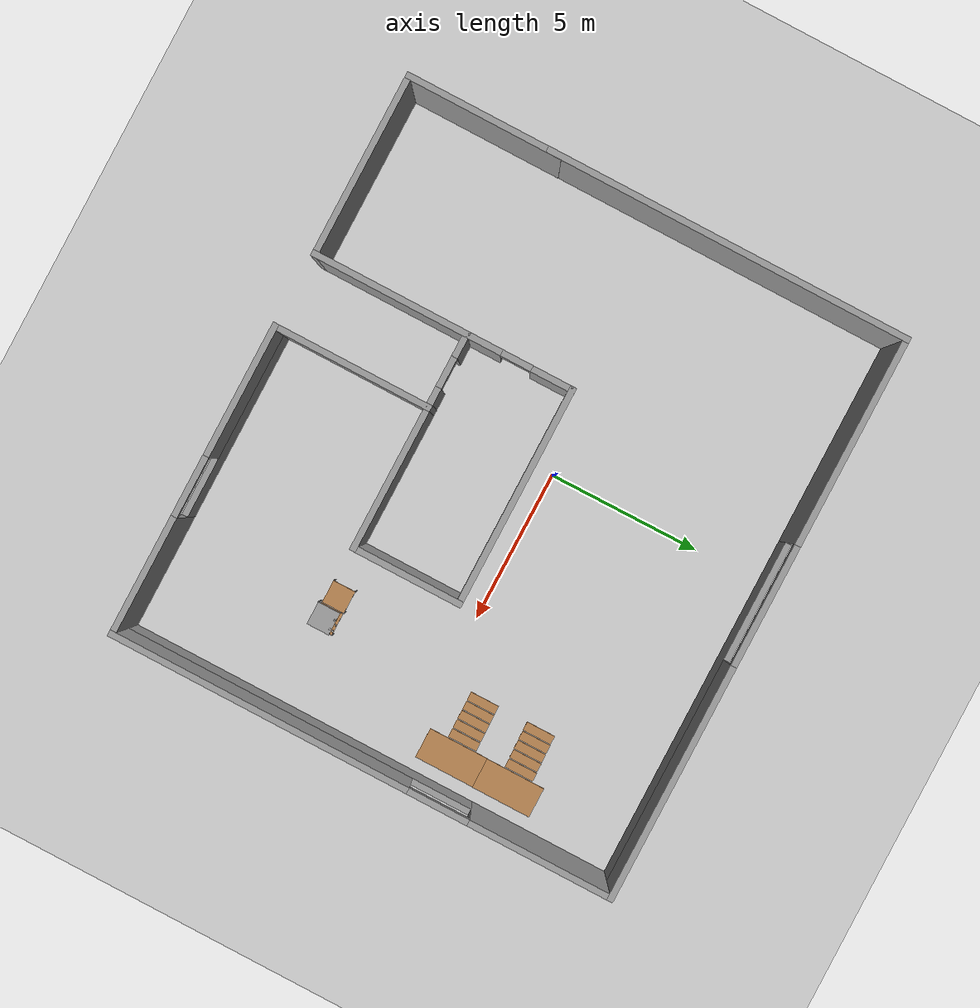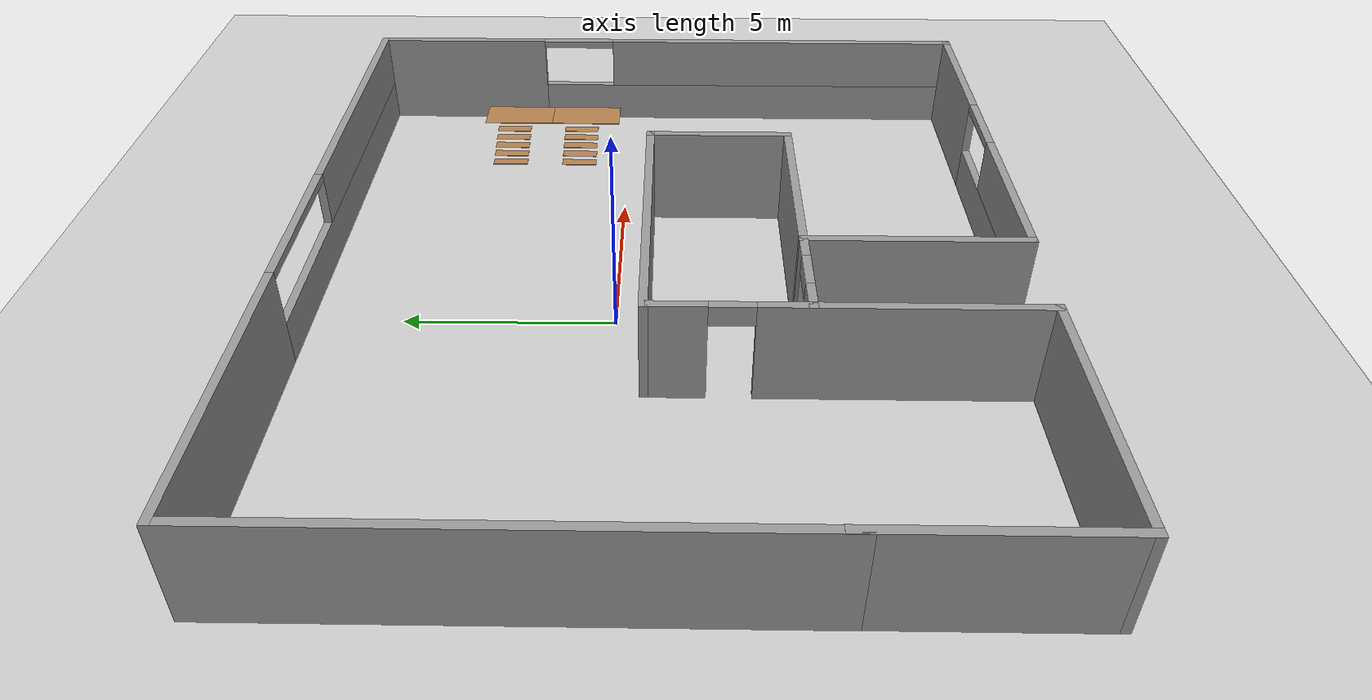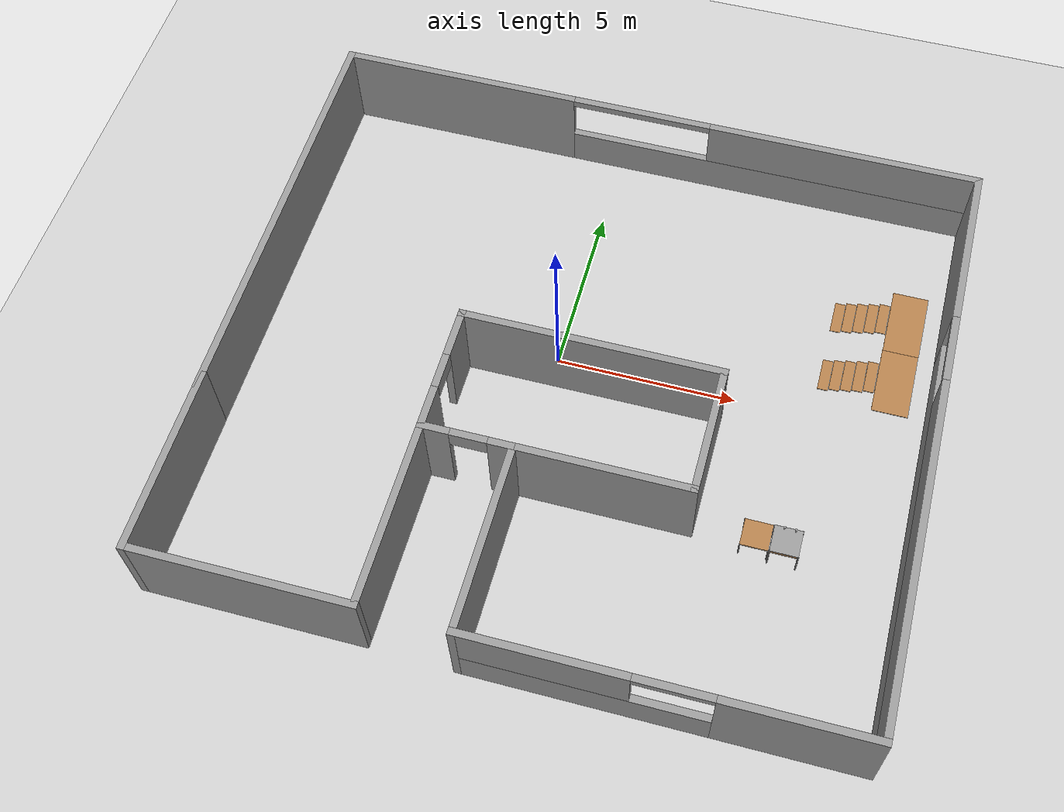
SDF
<sdf version="1.6">
 <world name="default">
  <light name="sun" type="directional">
   <pose>0 0 10 0 -0 0</pose>
   <diffuse>0.8 0.8 0.8 1</diffuse>
   <specular>0.2 0.2 0.2 1</specular>
   <attenuation>
    <range>1000</range>
    <constant>0.9</constant>
    <linear>0.01</linear>
    <quadratic>0.001</quadratic>
   </attenuation>
   <direction>-0.5 0.1 -0.9</direction>
  </light>
  <model name="ground_plane">
   <static>1</static>
   <link name="link">
    <collision name="collision">
     <geometry><plane><normal>0 0 1</normal><size>100 100</size></plane></geometry>
     <surface>
      <contact><collide_bitmask>65535</collide_bitmask></contact>
      <friction><ode><mu>100</mu><mu2>50</mu2></ode></friction>
     </surface>
    </collision>
    <visual name="visual">
     <cast_shadows>0</cast_shadows>
     <geometry><plane><normal>0 0 1</normal><size>100 100</size></plane></geometry>
     <material>
      <script><uri>file://media/materials/scripts/gazebo.material</uri><name>Gazebo/Grey</name></script>
     </material>
    </visual>
   </link>
  </model>
  <gravity>0 0 -9.8</gravity>
  <magnetic_field>6e-06 2.3e-05 -4.2e-05</magnetic_field>
  <atmosphere type="adiabatic"/>
  <physics name="default_physics" default="0" type="ode">
   <max_step_size>0.001</max_step_size>
   <real_time_factor>1</real_time_factor>
   <real_time_update_rate>1000</real_time_update_rate>
  </physics>
  <scene><ambient>0.4 0.4 0.4 1</ambient><background>0.7 0.7 0.7 1</background><shadows>1</shadows></scene>
  <audio><device>default</device></audio>
  <spherical_coordinates>
   <surface_model>EARTH_WGS84</surface_model>
   <latitude_deg>0</latitude_deg>
   <longitude_deg>0</longitude_deg>
   <elevation>0</elevation>
   <heading_deg>0</heading_deg>
  </spherical_coordinates>
  <model name="walls">
   <link name="Wall_0">
    <collision name="Wall_0_Collision">
     <geometry><box><size>11.9993 0.2 2.5</size></box></geometry>
     <pose>0 0 1.25 0 -0 0</pose>
    </collision>
    <visual name="Wall_0_Visual">
     <pose>0 0 1.25 0 -0 0</pose>
     <geometry><box><size>11.9993 0.2 2.5</size></box></geometry>
     <material>
      <script><uri>file://media/materials/scripts/gazebo.material</uri><name>Gazebo/Grey</name></script>
     </material>
    </visual>
    <velocity_decay><linear>0</linear><angular>0</angular></velocity_decay>
    <pose>-3.37 1.79965 0 0 -0 1.5708</pose>
   </link>
   <link name="Wall_1">
    <pose>5.88001 7.6993 0 0 -0 0</pose>
    <visual name="Wall_1_Visual_0">
     <pose>-5.88207 0 1.25 0 -0 0</pose>
     <geometry><box><size>6.93586 0.2 2.5</size></box></geometry>
     <material>
      <script><uri>file://media/materials/scripts/gazebo.material</uri><name>Gazebo/Grey</name></script>
     </material>
    </visual>
    <collision name="Wall_1_Collision_0">
     <geometry><box><size>6.93586 0.2 2.5</size></box></geometry>
     <pose>-5.88207 0 1.25 0 -0 0</pose>
    </collision>
    <visual name="Wall_1_Visual_1">
     <pose>3.46793 0 0.55 0 -0 0</pose>
     <geometry><box><size>11.7641 0.2 1.1</size></box></geometry>
     <material>
      <script><uri>file://media/materials/scripts/gazebo.material</uri><name>Gazebo/Grey</name></script>
     </material>
    </visual>
    <collision name="Wall_1_Collision_1">
     <geometry><box><size>11.7641 0.2 1.1</size></box></geometry>
     <pose>3.46793 0 0.55 0 -0 0</pose>
    </collision>
    <visual name="Wall_1_Visual_2">
     <pose>5.46793 0 1.8 0 -0 0</pose>
     <geometry><box><size>7.76414 0.2 1.4</size></box></geometry>
     <material>
      <script><uri>file://media/materials/scripts/gazebo.material</uri><name>Gazebo/Grey</name></script>
     </material>
    </visual>
    <collision name="Wall_1_Collision_2">
     <geometry><box><size>7.76414 0.2 1.4</size></box></geometry>
     <pose>5.46793 0 1.8 0 -0 0</pose>
    </collision>
    <visual name="Wall_1_Visual_3">
     <pose>-0.414141 0 2.4 0 -0 0</pose>
     <geometry><box><size>4 0.2 0.2</size></box></geometry>
     <material>
      <script><uri>file://media/materials/scripts/gazebo.material</uri><name>Gazebo/Grey</name></script>
     </material>
    </visual>
    <collision name="Wall_1_Collision_3">
     <geometry><box><size>4 0.2 0.2</size></box></geometry>
     <pose>-0.414141 0 2.4 0 -0 0</pose>
    </collision>
    <velocity_decay><linear>0</linear><angular>0</angular></velocity_decay>
   </link>
   <link name="Wall_10">
    <collision name="Wall_10_Collision">
     <geometry><box><size>5.17806 0.2 2.5</size></box></geometry>
     <pose>0 0 1.25 0 -0 0</pose>
    </collision>
    <visual name="Wall_10_Visual">
     <pose>0 0 1.25 0 -0 0</pose>
     <geometry><box><size>5.17806 0.2 2.5</size></box></geometry>
     <material>
      <script><uri>file://media/materials/scripts/gazebo.material</uri><name>Gazebo/Grey</name></script>
     </material>
    </visual>
    <velocity_decay><linear>0</linear><angular>0</angular></velocity_decay>
    <pose>-3.36336 -6.28114 0 0 -0 1.5708</pose>
   </link>
   <link name="Wall_12">
    <pose>3.70438 -3.74874 0 0 -0 3.14159</pose>
    <visual name="Wall_12_Visual_0">
     <pose>-0.931117 0 1.25 0 -0 0</pose>
     <geometry><box><size>0.700965 0.2 2.5</size></box></geometry>
     <material>
      <script><uri>file://media/materials/scripts/gazebo.material</uri><name>Gazebo/Grey</name></script>
     </material>
    </visual>
    <collision name="Wall_12_Collision_0">
     <geometry><box><size>0.700965 0.2 2.5</size></box></geometry>
     <pose>-0.931117 0 1.25 0 -0 0</pose>
    </collision>
    <visual name="Wall_12_Visual_1">
     <pose>0.850483 0 1.25 0 -0 0</pose>
     <geometry><box><size>0.862235 0.2 2.5</size></box></geometry>
     <material>
      <script><uri>file://media/materials/scripts/gazebo.material</uri><name>Gazebo/Grey</name></script>
     </material>
    </visual>
    <collision name="Wall_12_Collision_1">
     <geometry><box><size>0.862235 0.2 2.5</size></box></geometry>
     <pose>0.850483 0 1.25 0 -0 0</pose>
    </collision>
    <visual name="Wall_12_Visual_2">
     <pose>-0.080635 0 2.25 0 -0 0</pose>
     <geometry><box><size>1 0.2 0.5</size></box></geometry>
     <material>
      <script><uri>file://media/materials/scripts/gazebo.material</uri><name>Gazebo/Grey</name></script>
     </material>
    </visual>
    <collision name="Wall_12_Collision_2">
     <geometry><box><size>1 0.2 0.5</size></box></geometry>
     <pose>-0.080635 0 2.25 0 -0 0</pose>
    </collision>
    <velocity_decay><linear>0</linear><angular>0</angular></velocity_decay>
   </link>
   <link name="Wall_2">
    <pose>15.13 -0.5587 0 0 0 -1.5708</pose>
    <visual name="Wall_2_Visual_0">
     <pose>-5.9463 0 1.25 0 -0 0</pose>
     <geometry><box><size>4.82341 0.2 2.5</size></box></geometry>
     <material>
      <script><uri>file://media/materials/scripts/gazebo.material</uri><name>Gazebo/Grey</name></script>
     </material>
    </visual>
    <collision name="Wall_2_Collision_0">
     <geometry><box><size>4.82341 0.2 2.5</size></box></geometry>
     <pose>-5.9463 0 1.25 0 -0 0</pose>
    </collision>
    <visual name="Wall_2_Visual_1">
     <pose>2.4117 0 0.55 0 -0 0</pose>
     <geometry><box><size>11.8926 0.2 1.1</size></box></geometry>
     <material>
      <script><uri>file://media/materials/scripts/gazebo.material</uri><name>Gazebo/Grey</name></script>
     </material>
    </visual>
    <collision name="Wall_2_Collision_1">
     <geometry><box><size>11.8926 0.2 1.1</size></box></geometry>
     <pose>2.4117 0 0.55 0 -0 0</pose>
    </collision>
    <visual name="Wall_2_Visual_2">
     <pose>3.4117 0 1.8 0 -0 0</pose>
     <geometry><box><size>9.89259 0.2 1.4</size></box></geometry>
     <material>
      <script><uri>file://media/materials/scripts/gazebo.material</uri><name>Gazebo/Grey</name></script>
     </material>
    </visual>
    <collision name="Wall_2_Collision_2">
     <geometry><box><size>9.89259 0.2 1.4</size></box></geometry>
     <pose>3.4117 0 1.8 0 -0 0</pose>
    </collision>
    <visual name="Wall_2_Visual_3">
     <pose>-2.53459 0 2.4 0 -0 0</pose>
     <geometry><box><size>2 0.2 0.2</size></box></geometry>
     <material>
      <script><uri>file://media/materials/scripts/gazebo.material</uri><name>Gazebo/Grey</name></script>
     </material>
    </visual>
    <collision name="Wall_2_Collision_3">
     <geometry><box><size>2 0.2 0.2</size></box></geometry>
     <pose>-2.53459 0 2.4 0 -0 0</pose>
    </collision>
    <velocity_decay><linear>0</linear><angular>0</angular></velocity_decay>
   </link>
   <link name="Wall_3">
    <pose>10.0357 -8.81669 0 0 -0 3.14159</pose>
    <visual name="Wall_3_Visual_0">
     <pose>-3.20033 0 1.25 0 -0 0</pose>
     <geometry><box><size>3.98803 0.2 2.5</size></box></geometry>
     <material>
      <script><uri>file://media/materials/scripts/gazebo.material</uri><name>Gazebo/Grey</name></script>
     </material>
    </visual>
    <collision name="Wall_3_Collision_0">
     <geometry><box><size>3.98803 0.2 2.5</size></box></geometry>
     <pose>-3.20033 0 1.25 0 -0 0</pose>
    </collision>
    <visual name="Wall_3_Visual_1">
     <pose>1.99402 0 0.55 0 -0 0</pose>
     <geometry><box><size>6.40067 0.2 1.1</size></box></geometry>
     <material>
      <script><uri>file://media/materials/scripts/gazebo.material</uri><name>Gazebo/Grey</name></script>
     </material>
    </visual>
    <collision name="Wall_3_Collision_1">
     <geometry><box><size>6.40067 0.2 1.1</size></box></geometry>
     <pose>1.99402 0 0.55 0 -0 0</pose>
    </collision>
    <visual name="Wall_3_Visual_2">
     <pose>2.99402 0 1.8 0 -0 0</pose>
     <geometry><box><size>4.40067 0.2 1.4</size></box></geometry>
     <material>
      <script><uri>file://media/materials/scripts/gazebo.material</uri><name>Gazebo/Grey</name></script>
     </material>
    </visual>
    <collision name="Wall_3_Collision_2">
     <geometry><box><size>4.40067 0.2 1.4</size></box></geometry>
     <pose>2.99402 0 1.8 0 -0 0</pose>
    </collision>
    <visual name="Wall_3_Visual_3">
     <pose>-0.206321 0 2.4 0 -0 0</pose>
     <geometry><box><size>2 0.2 0.2</size></box></geometry>
     <material>
      <script><uri>file://media/materials/scripts/gazebo.material</uri><name>Gazebo/Grey</name></script>
     </material>
    </visual>
    <collision name="Wall_3_Collision_3">
     <geometry><box><size>2 0.2 0.2</size></box></geometry>
     <pose>-0.206321 0 2.4 0 -0 0</pose>
    </collision>
    <velocity_decay><linear>0</linear><angular>0</angular></velocity_decay>
   </link>
   <link name="Wall_4">
    <collision name="Wall_4_Collision">
     <geometry><box><size>5.27111 0.2 2.5</size></box></geometry>
     <pose>0 0 1.25 0 -0 0</pose>
    </collision>
    <visual name="Wall_4_Visual">
     <pose>0 0 1.25 0 -0 0</pose>
     <geometry><box><size>5.27111 0.2 2.5</size></box></geometry>
     <material>
      <script><uri>file://media/materials/scripts/gazebo.material</uri><name>Gazebo/Grey</name></script>
     </material>
    </visual>
    <velocity_decay><linear>0</linear><angular>0</angular></velocity_decay>
    <pose>4.94129 -6.28114 0 0 -0 1.5708</pose>
   </link>
   <link name="Wall_5">
    <collision name="Wall_5_Collision">
     <geometry><box><size>4.85239 0.2 2.5</size></box></geometry>
     <pose>0 0 1.25 0 -0 0</pose>
    </collision>
    <visual name="Wall_5_Visual">
     <pose>0 0 1.25 0 -0 0</pose>
     <geometry><box><size>4.85239 0.2 2.5</size></box></geometry>
     <material>
      <script><uri>file://media/materials/scripts/gazebo.material</uri><name>Gazebo/Grey</name></script>
     </material>
    </visual>
    <velocity_decay><linear>0</linear><angular>0</angular></velocity_decay>
    <pose>7.26748 -3.74559 0 0 -0 0</pose>
   </link>
   <link name="Wall_6">
    <collision name="Wall_6_Collision">
     <geometry><box><size>3.68929 0.2 2.5</size></box></geometry>
     <pose>0 0 1.25 0 -0 0</pose>
    </collision>
    <visual name="Wall_6_Visual">
     <pose>0 0 1.25 0 -0 0</pose>
     <geometry><box><size>3.68929 0.2 2.5</size></box></geometry>
     <material>
      <script><uri>file://media/materials/scripts/gazebo.material</uri><name>Gazebo/Grey</name></script>
     </material>
    </visual>
    <velocity_decay><linear>0</linear><angular>0</angular></velocity_decay>
    <pose>9.59368 -2.00094 0 0 -0 1.5708</pose>
   </link>
   <link name="Wall_7">
    <collision name="Wall_7_Collision">
     <geometry><box><size>7.27163 0.2 2.5</size></box></geometry>
     <pose>0 0 1.25 0 -0 0</pose>
    </collision>
    <visual name="Wall_7_Visual">
     <pose>0 0 1.25 0 -0 0</pose>
     <geometry><box><size>7.27163 0.2 2.5</size></box></geometry>
     <material>
      <script><uri>file://media/materials/scripts/gazebo.material</uri><name>Gazebo/Grey</name></script>
     </material>
    </visual>
    <velocity_decay><linear>0</linear><angular>0</angular></velocity_decay>
    <pose>6.05786 -0.256295 0 0 -0 3.14159</pose>
   </link>
   <link name="Wall_8">
    <pose>2.52204 -4.51323 0 0 0 -1.5708</pose>
    <visual name="Wall_8_Visual_0">
     <pose>-3.63983 0 1.25 0 -0 0</pose>
     <geometry><box><size>1.43422 0.2 2.5</size></box></geometry>
     <material>
      <script><uri>file://media/materials/scripts/gazebo.material</uri><name>Gazebo/Grey</name></script>
     </material>
    </visual>
    <collision name="Wall_8_Collision_0">
     <geometry><box><size>1.43422 0.2 2.5</size></box></geometry>
     <pose>-3.63983 0 1.25 0 -0 0</pose>
    </collision>
    <visual name="Wall_8_Visual_1">
     <pose>1.21711 0 1.25 0 -0 0</pose>
     <geometry><box><size>6.27966 0.2 2.5</size></box></geometry>
     <material>
      <script><uri>file://media/materials/scripts/gazebo.material</uri><name>Gazebo/Grey</name></script>
     </material>
    </visual>
    <collision name="Wall_8_Collision_1">
     <geometry><box><size>6.27966 0.2 2.5</size></box></geometry>
     <pose>1.21711 0 1.25 0 -0 0</pose>
    </collision>
    <visual name="Wall_8_Visual_2">
     <pose>-2.42272 0 2.25 0 -0 0</pose>
     <geometry><box><size>1 0.2 0.5</size></box></geometry>
     <material>
      <script><uri>file://media/materials/scripts/gazebo.material</uri><name>Gazebo/Grey</name></script>
     </material>
    </visual>
    <collision name="Wall_8_Collision_2">
     <geometry><box><size>1 0.2 0.5</size></box></geometry>
     <pose>-2.42272 0 2.25 0 -0 0</pose>
    </collision>
    <velocity_decay><linear>0</linear><angular>0</angular></velocity_decay>
   </link>
   <link name="Wall_9">
    <collision name="Wall_9_Collision">
     <geometry><box><size>6.08541 0.2 2.5</size></box></geometry>
     <pose>0 0 1.25 0 -0 0</pose>
    </collision>
    <visual name="Wall_9_Visual">
     <pose>0 0 1.25 0 -0 0</pose>
     <geometry><box><size>6.08541 0.2 2.5</size></box></geometry>
     <material>
      <script><uri>file://media/materials/scripts/gazebo.material</uri><name>Gazebo/Grey</name></script>
     </material>
    </visual>
    <velocity_decay><linear>0</linear><angular>0</angular></velocity_decay>
    <pose>-0.420658 -8.77017 0 0 -0 3.14159</pose>
   </link>
   <static>1</static>
   <pose>-4.93349 -0.453193 0 0 -0 0</pose>
  </model>
  <model name="bauzil_stairs">
   <static>1</static>
   <link name="step_1">
    <collision name="step_1">
     <pose>2.01 -0.059996 0.59 0 -0 0</pose>
     <geometry><box><size>0.982111 1.96422 0.02</size></box></geometry>
    </collision>
    <visual name="step_1">
     <pose>2.01 -0.059996 0.59 0 -0 0</pose>
     <geometry><box><size>0.982111 1.96422 0.02</size></box></geometry>
     <material>
      <script><uri>file://media/materials/scripts/gazebo.material</uri><name>Gazebo/Wood</name></script>
     </material>
    </visual>
   </link>
   <link name="step_2">
    <collision name="step_2">
     <pose>1.36 0.040004 0.49 0 -0 0</pose>
     <geometry><box><size>0.288506 0.961687 0.02</size></box></geometry>
    </collision>
    <visual name="step_2">
     <pose>1.36 0.040004 0.49 0 -0 0</pose>
     <geometry><box><size>0.288506 0.961687 0.02</size></box></geometry>
     <material>
      <script><uri>file://media/materials/scripts/gazebo.material</uri><name>Gazebo/Wood</name></script>
     </material>
    </visual>
   </link>
   <link name="step_3">
    <collision name="step_3">
     <pose>1.06 0.040004 0.39 0 -0 0</pose>
     <geometry><box><size>0.288506 0.961687 0.02</size></box></geometry>
    </collision>
    <visual name="step_3">
     <pose>1.06 0.040004 0.39 0 -0 0</pose>
     <geometry><box><size>0.288506 0.961687 0.02</size></box></geometry>
     <material>
      <script><uri>file://media/materials/scripts/gazebo.material</uri><name>Gazebo/Wood</name></script>
     </material>
    </visual>
   </link>
   <link name="step_4">
    <collision name="step_4">
     <pose>0.76 0.040004 0.29 0 -0 0</pose>
     <geometry><box><size>0.288506 0.961687 0.02</size></box></geometry>
    </collision>
    <visual name="step_4">
     <pose>0.76 0.040004 0.29 0 -0 0</pose>
     <geometry><box><size>0.288506 0.961687 0.02</size></box></geometry>
     <material>
      <script><uri>file://media/materials/scripts/gazebo.material</uri><name>Gazebo/Wood</name></script>
     </material>
    </visual>
   </link>
   <link name="step_5">
    <collision name="step_5">
     <pose>0.46 0.040004 0.19 0 -0 0</pose>
     <geometry><box><size>0.288506 0.961687 0.02</size></box></geometry>
    </collision>
    <visual name="step_5">
     <pose>0.46 0.040004 0.19 0 -0 0</pose>
     <geometry><box><size>0.288506 0.961687 0.02</size></box></geometry>
     <material>
      <script><uri>file://media/materials/scripts/gazebo.material</uri><name>Gazebo/Wood</name></script>
     </material>
    </visual>
   </link>
   <link name="step_6">
    <collision name="step_6">
     <pose>0.16 0.040004 0.09 0 -0 0</pose>
     <geometry><box><size>0.288506 0.961687 0.02</size></box></geometry>
    </collision>
    <visual name="step_6">
     <pose>0.16 0.040004 0.09 0 -0 0</pose>
     <geometry><box><size>0.288506 0.961687 0.02</size></box></geometry>
     <material>
      <script><uri>file://media/materials/scripts/gazebo.material</uri><name>Gazebo/Wood</name></script>
     </material>
    </visual>
   </link>
   <pose>7.08182 1.3544 0 0 -0 0</pose>
  </model>
  <model name="bauzil_stairs_0">
   <static>1</static>
   <link name="step_1">
    <collision name="step_1">
     <pose>2.01 -0.059996 0.59 0 -0 0</pose>
     <geometry><box><size>0.982111 1.96422 0.02</size></box></geometry>
    </collision>
    <visual name="step_1">
     <pose>2.01 -0.059996 0.59 0 -0 0</pose>
     <geometry><box><size>0.982111 1.96422 0.02</size></box></geometry>
     <material>
      <script><uri>file://media/materials/scripts/gazebo.material</uri><name>Gazebo/Wood</name></script>
     </material>
    </visual>
   </link>
   <link name="step_2">
    <collision name="step_2">
     <pose>1.36 0.040004 0.49 0 -0 0</pose>
     <geometry><box><size>0.288506 0.961687 0.02</size></box></geometry>
    </collision>
    <visual name="step_2">
     <pose>1.36 0.040004 0.49 0 -0 0</pose>
     <geometry><box><size>0.288506 0.961687 0.02</size></box></geometry>
     <material>
      <script><uri>file://media/materials/scripts/gazebo.material</uri><name>Gazebo/Wood</name></script>
     </material>
    </visual>
   </link>
   <link name="step_3">
    <collision name="step_3">
     <pose>1.06 0.040004 0.39 0 -0 0</pose>
     <geometry><box><size>0.288506 0.961687 0.02</size></box></geometry>
    </collision>
    <visual name="step_3">
     <pose>1.06 0.040004 0.39 0 -0 0</pose>
     <geometry><box><size>0.288506 0.961687 0.02</size></box></geometry>
     <material>
      <script><uri>file://media/materials/scripts/gazebo.material</uri><name>Gazebo/Wood</name></script>
     </material>
    </visual>
   </link>
   <link name="step_4">
    <collision name="step_4">
     <pose>0.76 0.040004 0.29 0 -0 0</pose>
     <geometry><box><size>0.288506 0.961687 0.02</size></box></geometry>
    </collision>
    <visual name="step_4">
     <pose>0.76 0.040004 0.29 0 -0 0</pose>
     <geometry><box><size>0.288506 0.961687 0.02</size></box></geometry>
     <material>
      <script><uri>file://media/materials/scripts/gazebo.material</uri><name>Gazebo/Wood</name></script>
     </material>
    </visual>
   </link>
   <link name="step_5">
    <collision name="step_5">
     <pose>0.46 0.040004 0.19 0 -0 0</pose>
     <geometry><box><size>0.288506 0.961687 0.02</size></box></geometry>
    </collision>
    <visual name="step_5">
     <pose>0.46 0.040004 0.19 0 -0 0</pose>
     <geometry><box><size>0.288506 0.961687 0.02</size></box></geometry>
     <material>
      <script><uri>file://media/materials/scripts/gazebo.material</uri><name>Gazebo/Wood</name></script>
     </material>
    </visual>
   </link>
   <link name="step_6">
    <collision name="step_6">
     <pose>0.16 0.040004 0.09 0 -0 0</pose>
     <geometry><box><size>0.288506 0.961687 0.02</size></box></geometry>
    </collision>
    <visual name="step_6">
     <pose>0.16 0.040004 0.09 0 -0 0</pose>
     <geometry><box><size>0.288506 0.961687 0.02</size></box></geometry>
     <material>
      <script><uri>file://media/materials/scripts/gazebo.material</uri><name>Gazebo/Wood</name></script>
     </material>
    </visual>
   </link>
   <pose>7.08932 3.31501 0 0 -0 0</pose>
  </model>
  <model name="table">
   <static>1</static>
   <link name="link">
    <collision name="surface">
     <pose>0 0 0.5 0 -0 0</pose>
     <geometry><box><size>0.75 0.75 0.04</size></box></geometry>
    </collision>
    <visual name="visual1">
     <pose>0 0 0.5 0 -0 0</pose>
     <geometry><box><size>0.75 0.75 0.04</size></box></geometry>
     <material>
      <script><uri>file://media/materials/scripts/gazebo.material</uri><name>Gazebo/Wood</name></script>
     </material>
    </visual>
    <collision name="front_left_leg">
     <pose>0.37 0.37 0.25 0 -0 0</pose>
     <geometry><cylinder><radius>0.02</radius><length>0.5</length></cylinder></geometry>
    </collision>
    <visual name="front_left_leg">
     <pose>0.37 0.37 0.25 0 -0 0</pose>
     <geometry><cylinder><radius>0.02</radius><length>0.5</length></cylinder></geometry>
     <material>
      <script><uri>file://media/materials/scripts/gazebo.material</uri><name>Gazebo/Grey</name></script>
     </material>
    </visual>
    <collision name="front_right_leg">
     <pose>0.37 -0.37 0.25 0 -0 0</pose>
     <geometry><cylinder><radius>0.02</radius><length>0.5</length></cylinder></geometry>
    </collision>
    <visual name="front_right_leg">
     <pose>0.37 -0.37 0.25 0 -0 0</pose>
     <geometry><cylinder><radius>0.02</radius><length>0.5</length></cylinder></geometry>
     <material>
      <script><uri>file://media/materials/scripts/gazebo.material</uri><name>Gazebo/Grey</name></script>
     </material>
    </visual>
    <collision name="back_right_leg">
     <pose>-0.37 -0.37 0.25 0 -0 0</pose>
     <geometry><cylinder><radius>0.02</radius><length>0.5</length></cylinder></geometry>
    </collision>
    <visual name="back_right_leg">
     <pose>-0.37 -0.37 0.25 0 -0 0</pose>
     <geometry><cylinder><radius>0.02</radius><length>0.5</length></cylinder></geometry>
     <material>
      <script><uri>file://media/materials/scripts/gazebo.material</uri><name>Gazebo/Grey</name></script>
     </material>
    </visual>
    <collision name="back_left_leg">
     <pose>-0.37 0.37 0.25 0 -0 0</pose>
     <geometry><cylinder><radius>0.02</radius><length>0.5</length></cylinder></geometry>
    </collision>
    <visual name="back_left_leg">
     <pose>-0.37 0.37 0.25 0 -0 0</pose>
     <geometry><cylinder><radius>0.02</radius><length>0.5</length></cylinder></geometry>
     <material>
      <script><uri>file://media/materials/scripts/gazebo.material</uri><name>Gazebo/Grey</name></script>
     </material>
    </visual>
    <velocity_decay><linear>0</linear><angular>0</angular></velocity_decay>
   </link>
   <pose>6.3715 -4.04689 0 0 -0 0</pose>
  </model>
  <model name="table_clone">
   <static>1</static>
   <link name="link">
    <collision name="surface">
     <pose>0 0 0.5 0 -0 0</pose>
     <geometry><box><size>0.75 0.75 0.04</size></box></geometry>
    </collision>
    <visual name="visual1">
     <pose>0 0 0.5 0 -0 0</pose>
     <geometry><box><size>0.75 0.75 0.04</size></box></geometry>
     <material>
      <script><uri>file://media/materials/scripts/gazebo.material</uri><name>Gazebo/Wood</name></script>
     </material>
    </visual>
    <collision name="front_left_leg">
     <pose>0.37 0.37 0.25 0 -0 0</pose>
     <geometry><cylinder><radius>0.02</radius><length>0.5</length></cylinder></geometry>
    </collision>
    <visual name="front_left_leg">
     <pose>0.37 0.37 0.25 0 -0 0</pose>
     <geometry><cylinder><radius>0.02</radius><length>0.5</length></cylinder></geometry>
     <material>
      <script><uri>file://media/materials/scripts/gazebo.material</uri><name>Gazebo/Grey</name></script>
     </material>
    </visual>
    <collision name="front_right_leg">
     <pose>0.37 -0.37 0.25 0 -0 0</pose>
     <geometry><cylinder><radius>0.02</radius><length>0.5</length></cylinder></geometry>
    </collision>
    <visual name="front_right_leg">
     <pose>0.37 -0.37 0.25 0 -0 0</pose>
     <geometry><cylinder><radius>0.02</radius><length>0.5</length></cylinder></geometry>
     <material>
      <script><uri>file://media/materials/scripts/gazebo.material</uri><name>Gazebo/Grey</name></script>
     </material>
    </visual>
    <collision name="back_right_leg">
     <pose>-0.37 -0.37 0.25 0 -0 0</pose>
     <geometry><cylinder><radius>0.02</radius><length>0.5</length></cylinder></geometry>
    </collision>
    <visual name="back_right_leg">
     <pose>-0.37 -0.37 0.25 0 -0 0</pose>
     <geometry><cylinder><radius>0.02</radius><length>0.5</length></cylinder></geometry>
     <material>
      <script><uri>file://media/materials/scripts/gazebo.material</uri><name>Gazebo/Grey</name></script>
     </material>
    </visual>
    <collision name="back_left_leg">
     <pose>-0.37 0.37 0.25 0 -0 0</pose>
     <geometry><cylinder><radius>0.02</radius><length>0.5</length></cylinder></geometry>
    </collision>
    <visual name="back_left_leg">
     <pose>-0.37 0.37 0.25 0 -0 0</pose>
     <geometry><cylinder><radius>0.02</radius><length>0.5</length></cylinder></geometry>
     <material>
      <script><uri>file://media/materials/scripts/gazebo.material</uri><name>Gazebo/Grey</name></script>
     </material>
    </visual>
    <velocity_decay><linear>0</linear><angular>0</angular></velocity_decay>
   </link>
   <pose>7.14247 -4.06144 0 0 -0 0</pose>
  </model>
  <model name="aruco_cube_0">
   <static>0</static>
   <link name="link">
    <inertial>
     <mass>0.05</mass>
     <inertia>
      <ixx>5.2083e-05</ixx>
      <ixy>0</ixy>
      <ixz>0</ixz>
      <iyy>5.2083e-05</iyy>
      <iyz>0</iyz>
      <izz>2.0833e-05</izz>
     </inertia>
    </inertial>
    <collision name="colision">
     <geometry><box><size>0.05 0.05 0.1</size></box></geometry>
     <surface>
      <friction><ode><mu>30</mu><mu2>30</mu2><fdir1>0 0 0</fdir1></ode></friction>
      <contact><ode><kp>1e+06</kp><kd>100</kd><min_depth>0.0025</min_depth><max_vel>1</max_vel></ode></contact>
     </surface>
    </collision>
    <visual name="visual1">
     <geometry>
      <mesh><uri>model://aruco_cube_2/meshes/aruco_cube_5cm.dae</uri><scale>1 1 2</scale></mesh>
     </geometry>
    </visual>
    <velocity_decay><linear>0</linear><angular>0</angular></velocity_decay>
   </link>
   <pose>7.32098 -3.81338 0.7875 0 -0 7e-06</pose>
  </model>
  <model name="aruco_cube_2">
   <static>0</static>
   <link name="link">
    <inertial>
     <mass>0.05</mass>
     <inertia>
      <ixx>5.2083e-05</ixx>
      <ixy>0</ixy>
      <ixz>0</ixz>
      <iyy>5.2083e-05</iyy>
      <iyz>0</iyz>
      <izz>2.0833e-05</izz>
     </inertia>
    </inertial>
    <collision name="colision">
     <geometry><box><size>0.05 0.05 0.1</size></box></geometry>
     <surface>
      <friction><ode><mu>30</mu><mu2>30</mu2><fdir1>0 0 0</fdir1></ode></friction>
      <contact><ode><kp>1e+06</kp><kd>100</kd><min_depth>0.0025</min_depth><max_vel>1</max_vel></ode></contact>
     </surface>
    </collision>
    <visual name="visual1">
     <geometry>
      <mesh><uri>model://aruco_cube_8/meshes/aruco_cube_5cm.dae</uri><scale>1 1 2</scale></mesh>
     </geometry>
    </visual>
    <velocity_decay><linear>0</linear><angular>0</angular></velocity_decay>
   </link>
   <pose>7.02269 -3.80907 0.787922 -0.001333 7.2e-05 -0</pose>
  </model>
  <model name="aruco_cube_4">
   <static>0</static>
   <link name="link">
    <inertial>
     <mass>0.05</mass>
     <inertia>
      <ixx>5.2083e-05</ixx>
      <ixy>0</ixy>
      <ixz>0</ixz>
      <iyy>5.2083e-05</iyy>
      <iyz>0</iyz>
      <izz>2.0833e-05</izz>
     </inertia>
    </inertial>
    <collision name="colision">
     <geometry><box><size>0.05 0.05 0.1</size></box></geometry>
     <surface>
      <friction><ode><mu>30</mu><mu2>30</mu2><fdir1>0 0 0</fdir1></ode></friction>
      <contact><ode><kp>1e+06</kp><kd>100</kd><min_depth>0.0025</min_depth><max_vel>1</max_vel></ode></contact>
     </surface>
    </collision>
    <visual name="visual1">
     <geometry>
      <mesh><uri>model://aruco_cube_5/meshes/aruco_cube_5cm.dae</uri><scale>1 1 2</scale></mesh>
     </geometry>
    </visual>
    <velocity_decay><linear>0</linear><angular>0</angular></velocity_decay>
   </link>
   <pose>7.17401 -3.72321 0.5675 0 -0 0</pose>
  </model>
  <model name="aruco_cube_3">
   <static>0</static>
   <link name="link">
    <inertial>
     <mass>0.05</mass>
     <inertia>
      <ixx>5.2083e-05</ixx>
      <ixy>0</ixy>
      <ixz>0</ixz>
      <iyy>5.2083e-05</iyy>
      <iyz>0</iyz>
      <izz>2.0833e-05</izz>
     </inertia>
    </inertial>
    <collision name="colision">
     <geometry><box><size>0.05 0.05 0.1</size></box></geometry>
     <surface>
      <friction><ode><mu>30</mu><mu2>30</mu2><fdir1>0 0 0</fdir1></ode></friction>
      <contact><ode><kp>1e+06</kp><kd>100</kd><min_depth>0.0025</min_depth><max_vel>1</max_vel></ode></contact>
     </surface>
    </collision>
    <visual name="visual1">
     <geometry>
      <mesh><uri>model://aruco_cube_0/meshes/aruco_cube_5cm.dae</uri><scale>1 1 2</scale></mesh>
     </geometry>
    </visual>
    <velocity_decay><linear>0</linear><angular>0</angular></velocity_decay>
   </link>
   <pose>7.3737 -3.72035 0.5675 0 -0 0</pose>
  </model>
  <model name="table_0">
   <static>1</static>
   <link name="link">
    <collision name="surface">
     <pose>0 0 0.72 0 -0 0</pose>
     <geometry><box><size>0.75 0.75 0.04</size></box></geometry>
    </collision>
    <visual name="visual1">
     <pose>0 0 0.72 0 -0 0</pose>
     <geometry><box><size>0.75 0.75 0.04</size></box></geometry>
     <material>
      <script><uri>file://media/materials/scripts/gazebo.material</uri><name>Gazebo/Grey</name></script>
     </material>
    </visual>
    <collision name="front_left_leg">
     <pose>0.37 0.37 0.36 0 -0 0</pose>
     <geometry><cylinder><radius>0.02</radius><length>0.72</length></cylinder></geometry>
    </collision>
    <visual name="front_left_leg">
     <pose>0.37 0.37 0.36 0 -0 0</pose>
     <geometry><cylinder><radius>0.02</radius><length>0.72</length></cylinder></geometry>
     <material>
      <script><uri>file://media/materials/scripts/gazebo.material</uri><name>Gazebo/Grey</name></script>
     </material>
    </visual>
    <collision name="front_right_leg">
     <pose>0.37 -0.37 0.36 0 -0 0</pose>
     <geometry><cylinder><radius>0.02</radius><length>0.72</length></cylinder></geometry>
    </collision>
    <visual name="front_right_leg">
     <pose>0.37 -0.37 0.36 0 -0 0</pose>
     <geometry><cylinder><radius>0.02</radius><length>0.72</length></cylinder></geometry>
     <material>
      <script><uri>file://media/materials/scripts/gazebo.material</uri><name>Gazebo/Grey</name></script>
     </material>
    </visual>
    <collision name="back_right_leg">
     <pose>-0.37 -0.37 0.36 0 -0 0</pose>
     <geometry><cylinder><radius>0.02</radius><length>0.72</length></cylinder></geometry>
    </collision>
    <visual name="back_right_leg">
     <pose>-0.37 -0.37 0.36 0 -0 0</pose>
     <geometry><cylinder><radius>0.02</radius><length>0.72</length></cylinder></geometry>
     <material>
      <script><uri>file://media/materials/scripts/gazebo.material</uri><name>Gazebo/Grey</name></script>
     </material>
    </visual>
    <collision name="back_left_leg">
     <pose>-0.37 0.37 0.36 0 -0 0</pose>
     <geometry><cylinder><radius>0.02</radius><length>0.72</length></cylinder></geometry>
    </collision>
    <visual name="back_left_leg">
     <pose>-0.37 0.37 0.36 0 -0 0</pose>
     <geometry><cylinder><radius>0.02</radius><length>0.72</length></cylinder></geometry>
     <material>
      <script><uri>file://media/materials/scripts/gazebo.material</uri><name>Gazebo/Grey</name></script>
     </material>
    </visual>
    <velocity_decay><linear>0</linear><angular>0</angular></velocity_decay>
   </link>
   <pose>7.13999 -4.13696 0 0 -0 0</pose>
  </model>
 </world>
</sdf>
